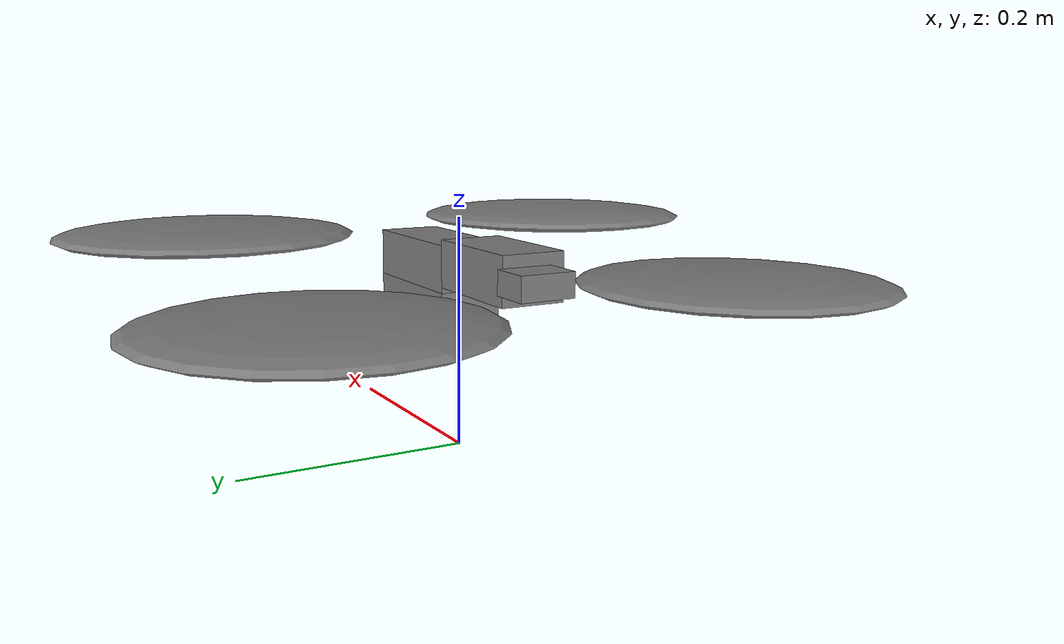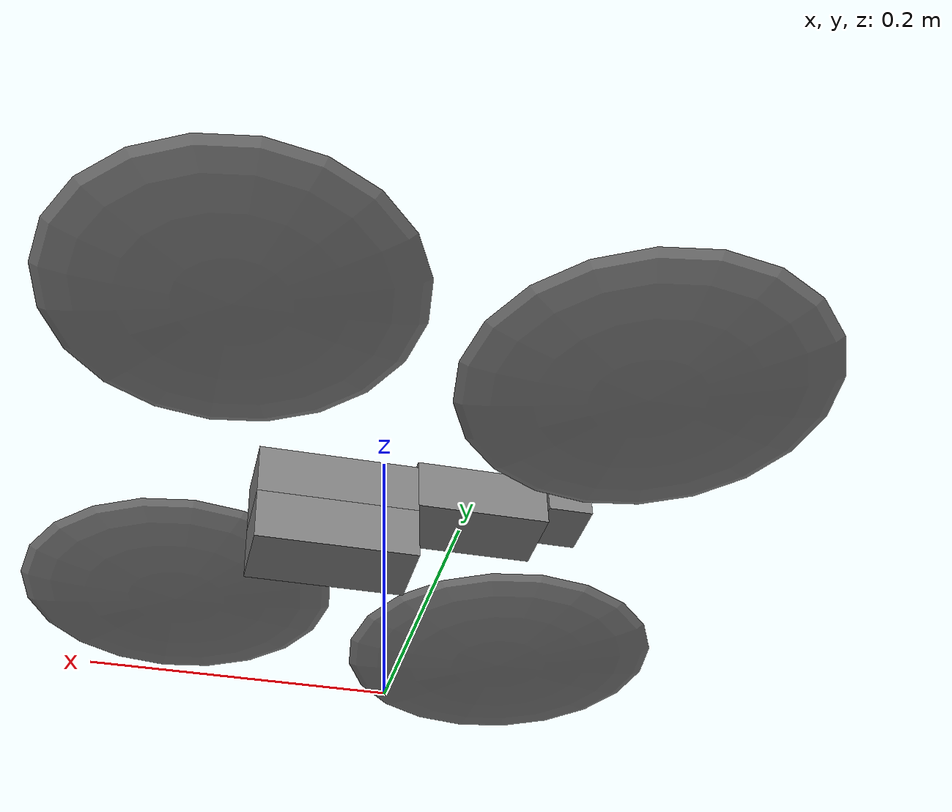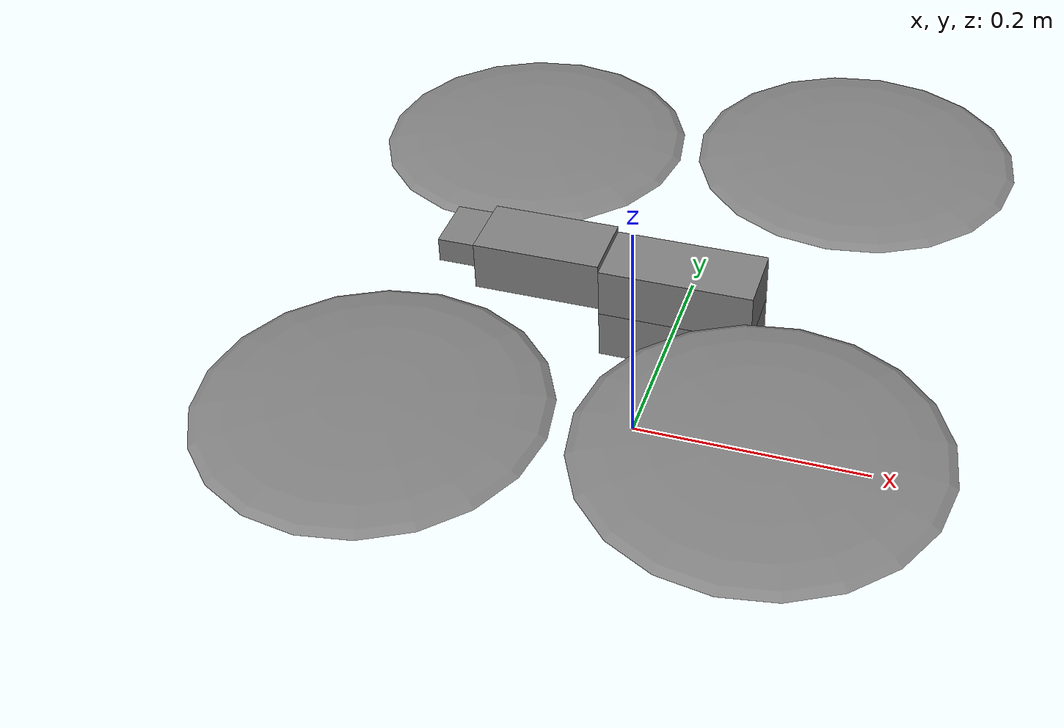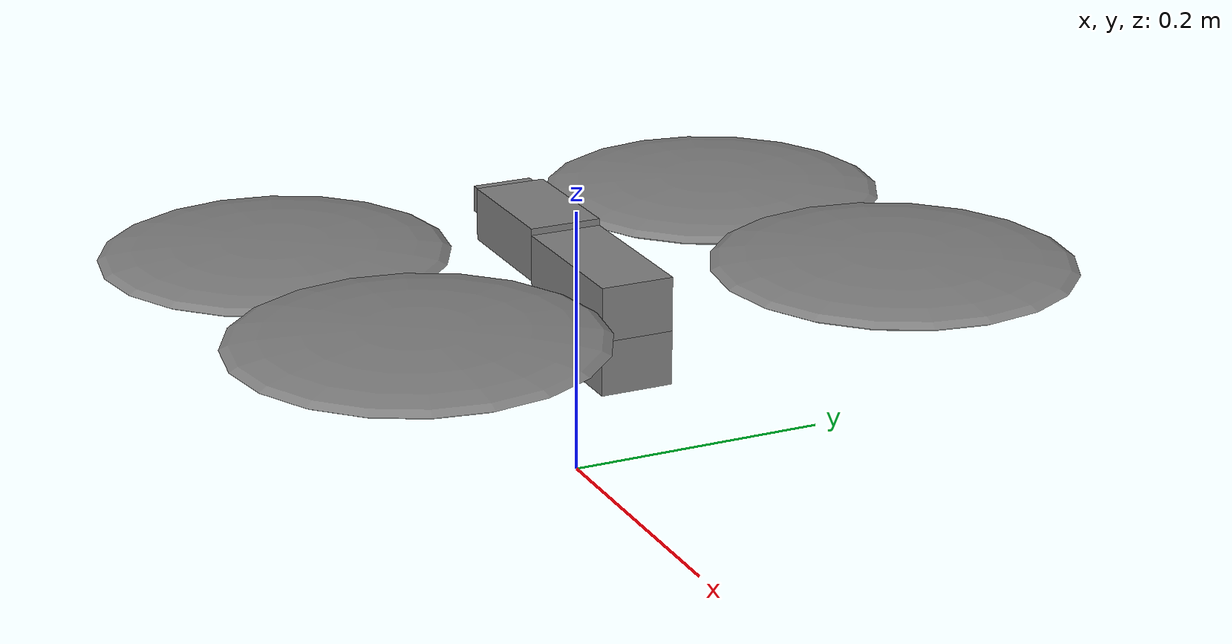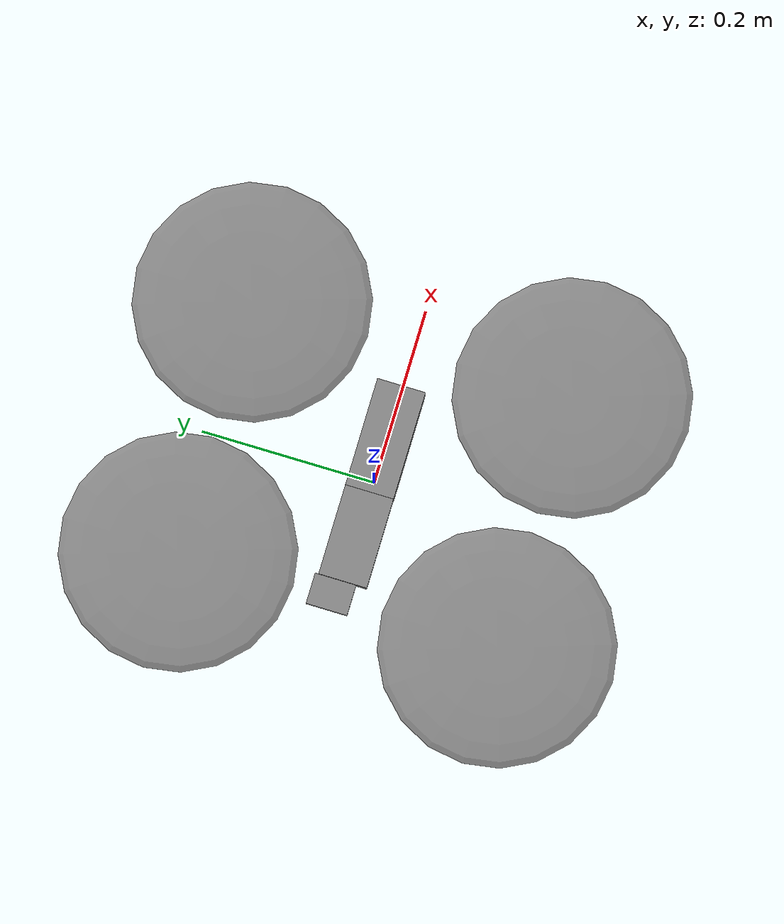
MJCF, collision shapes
<mujoco model="Skydio X2">
  <compiler autolimits="true" assetdir="assets"/>

  <option timestep="0.01" density="1.225" viscosity="1.8e-5"/>

  <default>
    <default class="x2">
      <geom mass="0"/>
      <motor ctrlrange="0 13"/>
      <mesh scale="0.01 0.01 0.01"/>
      <default class="visual">
        <geom group="2" type="mesh" contype="0" conaffinity="0"/>
      </default>
      <default class="collision">
        <geom group="3" type="box"/>
        <default class="rotor">
          <geom type="ellipsoid" size=".13 .13 .01"/>
        </default>
      </default>
      <site group="5"/>
    </default>
  </default>

  <asset>
    <texture type="2d" file="X2_lowpoly_texture_SpinningProps_1024.png"/>
    <material name="phong3SG" texture="X2_lowpoly_texture_SpinningProps_1024"/>
    <material name="invisible" rgba="0 0 0 0"/>

    <mesh class="x2" file="X2_lowpoly.obj"/>
  </asset>

  <worldbody>
    <light name="spotlight" mode="targetbodycom" target="x2" pos="0 -1 2"/>
    <body name="x2" pos="0 0 0.1" childclass="x2">
      <freejoint/>
      <camera name="track" pos="-1 0 .5" xyaxes="0 -1 0 1 0 2" mode="trackcom"/>
      <site name="imu" pos="0 0 .02"/>
      <geom material="phong3SG" mesh="X2_lowpoly" class="visual" quat="0 0 1 1"/>
      <geom class="collision" size=".06 .027 .02" pos=".04 0 .02"/>
      <geom class="collision" size=".06 .027 .02" pos=".04 0 .06"/>
      <geom class="collision" size=".05 .027 .02" pos="-.07 0 .065"/>
      <geom class="collision" size=".023 .017 .01" pos="-.137 .008 .065" quat="1 0 0 1"/>
      <geom name="rotor1" class="rotor" pos="-.14 -.18 .05" mass=".25"/>
      <geom name="rotor2" class="rotor" pos="-.14 .18 .05" mass=".25"/>
      <geom name="rotor3" class="rotor" pos=".14 .18 .08" mass=".25"/>
      <geom name="rotor4" class="rotor" pos=".14 -.18 .08" mass=".25"/>
      <geom size=".16 .04 .02" pos="0 0 0.02" type="ellipsoid" mass=".325" class="visual" material="invisible"/>
      <site name="thrust1" pos="-.14 -.18 .05"/>
      <site name="thrust2" pos="-.14 .18 .05"/>
      <site name="thrust3" pos=".14 .18 .08"/>
      <site name="thrust4" pos=".14 -.18 .08"/>

      <!-- LIDAR sensor sites - spherical coverage -->
      <!-- Horizontal ring (8 directions at 45° intervals) -->
      <site name="lidar_0" pos="0.08 0 0.04" size="0.01" rgba="1 0 0 1" zaxis="1 0 0"/>    <!-- Forward -->
      <site name="lidar_45" pos="0.057 0.057 0.04" size="0.01" rgba="1 0 0 1" zaxis="0.707 0.707 0"/>    <!-- Forward-right -->
      <site name="lidar_90" pos="0 0.08 0.04" size="0.01" rgba="1 0 0 1" zaxis="0 1 0"/>    <!-- Right -->
      <site name="lidar_135" pos="-0.057 0.057 0.04" size="0.01" rgba="1 0 0 1" zaxis="-0.707 0.707 0"/>  <!-- Back-right -->
      <site name="lidar_180" pos="-0.08 0 0.04" size="0.01" rgba="1 0 0 1" zaxis="-1 0 0"/>  <!-- Back -->
      <site name="lidar_225" pos="-0.057 -0.057 0.04" size="0.01" rgba="1 0 0 1" zaxis="-0.707 -0.707 0"/> <!-- Back-left -->
      <site name="lidar_270" pos="0 -0.08 0.04" size="0.01" rgba="1 0 0 1" zaxis="0 -1 0"/>  <!-- Left -->
      <site name="lidar_315" pos="0.057 -0.057 0.04" size="0.01" rgba="1 0 0 1" zaxis="0.707 -0.707 0"/>  <!-- Forward-left -->

      <!-- Upper ring (8 directions, 30° elevation) -->
      <site name="lidar_up_0" pos="0.069 0 0.07" size="0.01" rgba="1 0.5 0 1" zaxis="0.866 0 0.5"/>
      <site name="lidar_up_45" pos="0.049 0.049 0.07" size="0.01" rgba="1 0.5 0 1" zaxis="0.612 0.612 0.5"/>
      <site name="lidar_up_90" pos="0 0.069 0.07" size="0.01" rgba="1 0.5 0 1" zaxis="0 0.866 0.5"/>
      <site name="lidar_up_135" pos="-0.049 0.049 0.07" size="0.01" rgba="1 0.5 0 1" zaxis="-0.612 0.612 0.5"/>
      <site name="lidar_up_180" pos="-0.069 0 0.07" size="0.01" rgba="1 0.5 0 1" zaxis="-0.866 0 0.5"/>
      <site name="lidar_up_225" pos="-0.049 -0.049 0.07" size="0.01" rgba="1 0.5 0 1" zaxis="-0.612 -0.612 0.5"/>
      <site name="lidar_up_270" pos="0 -0.069 0.07" size="0.01" rgba="1 0.5 0 1" zaxis="0 -0.866 0.5"/>
      <site name="lidar_up_315" pos="0.049 -0.049 0.07" size="0.01" rgba="1 0.5 0 1" zaxis="0.612 -0.612 0.5"/>

      <!-- Lower ring (8 directions, -30° elevation) -->
      <site name="lidar_down_0" pos="0.069 0 0.01" size="0.01" rgba="0 1 1 1" zaxis="0.866 0 -0.5"/>
      <site name="lidar_down_45" pos="0.049 0.049 0.01" size="0.01" rgba="0 1 1 1" zaxis="0.612 0.612 -0.5"/>
      <site name="lidar_down_90" pos="0 0.069 0.01" size="0.01" rgba="0 1 1 1" zaxis="0 0.866 -0.5"/>
      <site name="lidar_down_135" pos="-0.049 0.049 0.01" size="0.01" rgba="0 1 1 1" zaxis="-0.612 0.612 -0.5"/>
      <site name="lidar_down_180" pos="-0.069 0 0.01" size="0.01" rgba="0 1 1 1" zaxis="-0.866 0 -0.5"/>
      <site name="lidar_down_225" pos="-0.049 -0.049 0.01" size="0.01" rgba="0 1 1 1" zaxis="-0.612 -0.612 -0.5"/>
      <site name="lidar_down_270" pos="0 -0.069 0.01" size="0.01" rgba="0 1 1 1" zaxis="0 -0.866 -0.5"/>
      <site name="lidar_down_315" pos="0.049 -0.049 0.01" size="0.01" rgba="0 1 1 1" zaxis="0.612 -0.612 -0.5"/>

      <!-- Zenith and nadir -->
      <site name="lidar_zenith" pos="0 0 0.09" size="0.01" rgba="0 1 0 1" zaxis="0 0 1"/>
      <site name="lidar_nadir" pos="0 0 -0.01" size="0.01" rgba="0 0 1 1" zaxis="0 0 -1"/>
    </body>
  </worldbody>

  <actuator>
    <motor class="x2" name="thrust1" site="thrust1" gear="0 0 1 0 0 .0201"/>
    <motor class="x2" name="thrust2" site="thrust2" gear="0 0 1 0 0 -.0201"/>
    <motor class="x2" name="thrust3" site="thrust3" gear="0 0 1 0 0 .0201"/>
    <motor class="x2" name="thrust4" site="thrust4" gear="0 0 1 0 0 -.0201"/>
  </actuator>

  <sensor>
    <gyro name="body_gyro" site="imu"/>
    <accelerometer name="body_linacc" site="imu"/>
    <framequat name="body_quat" objtype="site" objname="imu"/>

    <!-- LIDAR rangefinder sensors - spherical coverage -->
    <!-- Horizontal ring -->
    <rangefinder name="lidar_0" site="lidar_0" cutoff="5"/>
    <rangefinder name="lidar_45" site="lidar_45" cutoff="5"/>
    <rangefinder name="lidar_90" site="lidar_90" cutoff="5"/>
    <rangefinder name="lidar_135" site="lidar_135" cutoff="5"/>
    <rangefinder name="lidar_180" site="lidar_180" cutoff="5"/>
    <rangefinder name="lidar_225" site="lidar_225" cutoff="5"/>
    <rangefinder name="lidar_270" site="lidar_270" cutoff="5"/>
    <rangefinder name="lidar_315" site="lidar_315" cutoff="5"/>

    <!-- Upper ring -->
    <rangefinder name="lidar_up_0" site="lidar_up_0" cutoff="5"/>
    <rangefinder name="lidar_up_45" site="lidar_up_45" cutoff="5"/>
    <rangefinder name="lidar_up_90" site="lidar_up_90" cutoff="5"/>
    <rangefinder name="lidar_up_135" site="lidar_up_135" cutoff="5"/>
    <rangefinder name="lidar_up_180" site="lidar_up_180" cutoff="5"/>
    <rangefinder name="lidar_up_225" site="lidar_up_225" cutoff="5"/>
    <rangefinder name="lidar_up_270" site="lidar_up_270" cutoff="5"/>
    <rangefinder name="lidar_up_315" site="lidar_up_315" cutoff="5"/>

    <!-- Lower ring -->
    <rangefinder name="lidar_down_0" site="lidar_down_0" cutoff="5"/>
    <rangefinder name="lidar_down_45" site="lidar_down_45" cutoff="5"/>
    <rangefinder name="lidar_down_90" site="lidar_down_90" cutoff="5"/>
    <rangefinder name="lidar_down_135" site="lidar_down_135" cutoff="5"/>
    <rangefinder name="lidar_down_180" site="lidar_down_180" cutoff="5"/>
    <rangefinder name="lidar_down_225" site="lidar_down_225" cutoff="5"/>
    <rangefinder name="lidar_down_270" site="lidar_down_270" cutoff="5"/>
    <rangefinder name="lidar_down_315" site="lidar_down_315" cutoff="5"/>

    <!-- Zenith and nadir -->
    <rangefinder name="lidar_zenith" site="lidar_zenith" cutoff="5"/>
    <rangefinder name="lidar_nadir" site="lidar_nadir" cutoff="5"/>
  </sensor>

  <keyframe>
    <key name="hover" qpos="0 0 .3 1 0 0 0" ctrl="3.2495625 3.2495625 3.2495625 3.2495625"/>
  </keyframe>
</mujoco>
